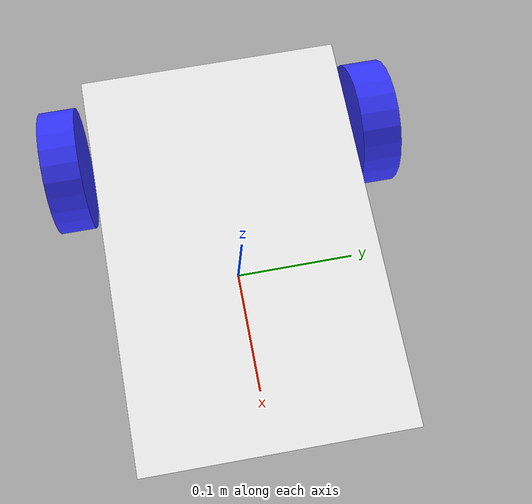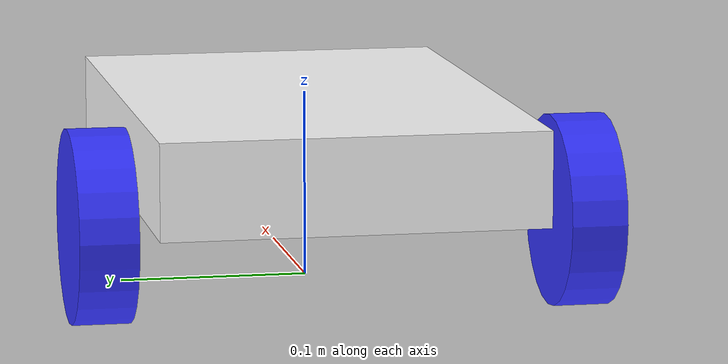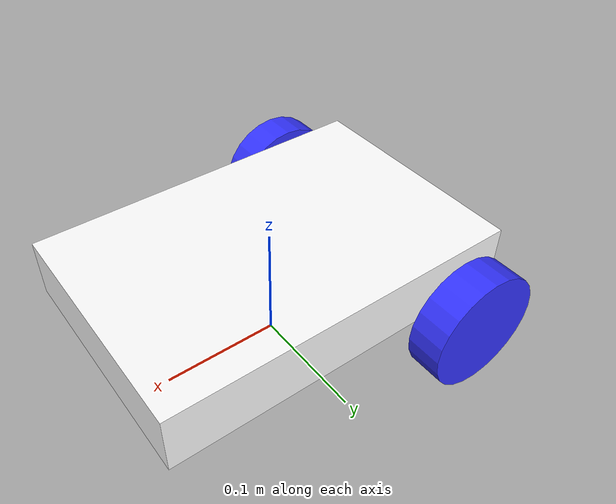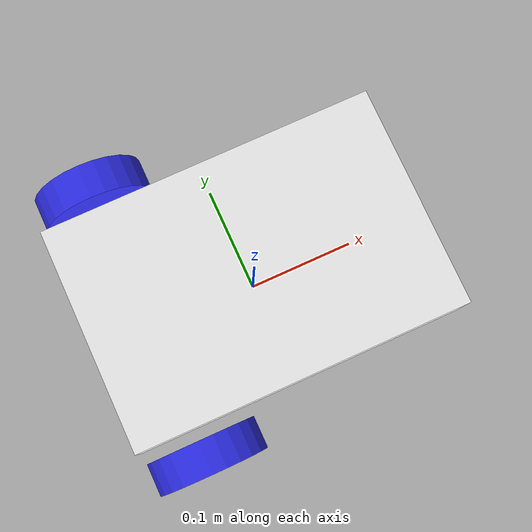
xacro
<?xml version="1.0"?>
<robot xmlns:xacro="http://www.ros.org/wiki/xacro">

    <material name="white">
        <color rgba="1 1 1 1" />
    </material>

    <material name="orange">
        <color rgba="1 0.3 0.1 1" />
    </material>

    <material name="blue">
        <color rgba="0.2 0.2 1 1" />
    </material>

    <material name="black">
        <color rgba="0 0 0 1" />
    </material>

    <material name="pink">
        <color rgba="0.7 0.09 0.5 1" />
    </material>

    <xacro:property name="box_x" value="0.3"/>
    <xacro:property name="box_y" value="0.2"/>
    <xacro:property name="box_z" value="0.05"/>

    <xacro:property name="wheel_radius" value="0.05"/>
    <xacro:property name="wheel_length" value="0.03"/>

    <xacro:property name="caster_wheel_radius" value="0.025"/>

    <xacro:property name="box_mass" value="0.5"/>
    <xacro:property name="wheel_mass" value="0.1"/>
    <xacro:property name="caster_wheel_mass" value="0.05"/>

    <xacro:property name="lidar_radius" value="0.03"/>
    <xacro:property name="lidar_length" value="0.03"/>

    <link name="base_link">
    </link>

    <link name="base_footprint">
    </link>

    <joint name="base_footprint_joint" type="fixed">
        <parent link="base_link" />
        <child link="base_footprint" />
        <origin xyz="0 0 0" rpy="0 0 0" />

    </joint>

    <link name="chassis">
        <visual>
            <origin xyz="0 0 0"/>
            <geometry>
                <box size="${box_x} ${box_y} ${box_z}"/>
            </geometry>
            <material name="white"/>
        </visual>
        <collision>
            <origin xyz="0 0 0"/>
            <geometry>
                <box size="${box_x-0.001} ${box_y-0.001} ${box_z-0.001}"/>
            </geometry>
        </collision>
        <inertial>
            <origin xyz="0 0 0" rpy="0 0 0" />
            <mass value="${box_mass}" />
            <inertia ixx="${(1/12)*box_mass*(box_y*box_y+box_z*box_z)}" ixy="0" ixz="0" iyy="${(1/12)*box_mass*(box_x*box_x+box_z*box_z)}" iyz="0"
            izz="${(1/12)*box_mass*(box_x*box_x+box_y*box_y)}" />
        </inertial>
    </link>

    <gazebo reference="chassis">
        <visual>
            <material>
                <ambient>1.0 1.0 1.0 1.0</ambient>
                <diffuse>1.0 1.0 1.0 1.0</diffuse>
                <specular>1.0 1.0 1.0 1.0</specular>
            </material>
        </visual>
    </gazebo>

    <joint name="chassis_joint" type="fixed">
        <parent link="base_link"/>
        <child link="chassis"/>
        <origin xyz="0 0 ${wheel_radius+box_z/2}"/>
    </joint>

    <link name="left_wheel">
        <visual>
            <origin xyz="0 0 0" rpy="${pi/2} 0 0"/>
            <geometry>
                <cylinder radius="${wheel_radius}" length="${wheel_length}" />
            </geometry>
            <material name='blue'/>
        </visual>
        <collision>
            <origin xyz="0 0 0" rpy="${pi/2} 0 0"/>
            <geometry>
                <cylinder radius="${wheel_radius}" length="${wheel_length-0.001}" />
            </geometry>
        </collision>
        <inertial>
            <origin xyz="0 0 0" rpy="${pi/2} 0 0" />
            <mass value="${wheel_mass}" />
            <inertia ixx="${(1/12)*wheel_mass*(3*wheel_radius*wheel_radius+wheel_length*wheel_length)}" ixy="0" ixz="0" iyy="${(1/12)*wheel_mass*(3*wheel_radius*wheel_radius+wheel_length*wheel_length)}" iyz="0"
            izz="${(1/2)*wheel_mass*(wheel_radius*wheel_radius)}" />
        </inertial>
    </link>
    <gazebo reference="left_wheel">
    <visual>
        <material>
            <ambient>0.0 0.0 1.0 1.0</ambient>
            <diffuse>0.0 0.0 1.0 1.0</diffuse>
            <specular>0.0 0.0 1.0 1.0</specular>
        </material>
    </visual>
    </gazebo>

    <joint name="left_wheel_joint" type="continuous">
        <parent link="base_link"/>
        <child link="left_wheel"/>
        <origin xyz="${-box_x/2+wheel_radius} ${box_y/2+wheel_length/2+0.01} ${wheel_radius}" rpy="0 0 0"/>
        <axis xyz="0 1 0" />
    </joint>

    <link name="right_wheel">
        <visual>
            <origin xyz="0 0 0" rpy="${pi/2} 0 0"/>
            <geometry>
                <cylinder radius="${wheel_radius}" length="${wheel_length-0.001}" />
            </geometry>
            <material name='blue'/>
        </visual>
        <collision>
            <origin xyz="0 0 0" rpy="${pi/2} 0 0"/>
            <geometry>
                <cylinder radius="${wheel_radius}" length="${wheel_length}" />
            </geometry>
        </collision>
        <inertial>
            <origin xyz="0 0 0" rpy="${pi/2} 0 0" />
            <mass value="${wheel_mass}" />
            <inertia ixx="${(1/12)*wheel_mass*(3*wheel_radius*wheel_radius+wheel_length*wheel_length)}" ixy="0" ixz="0" iyy="${(1/12)*wheel_mass*(3*wheel_radius*wheel_radius+wheel_length*wheel_length)}" iyz="0"
            izz="${(1/2)*wheel_mass*(wheel_radius*wheel_radius)}" />
        </inertial>

    </link>
    <gazebo reference="right_wheel">
    <visual>
        <material>
            <ambient>0.0 0.0 1.0 1.0</ambient>
            <diffuse>0.0 0.0 1.0 1.0</diffuse>
            <specular>0.0 0.0 1.0 1.0</specular>
        </material>
    </visual>
    </gazebo>

    <joint name="right_wheel_joint" type="continuous">
        <parent link="base_link"/>
        <child link="right_wheel"/>
        <origin xyz="${-box_x/2+wheel_radius} ${-box_y/2-wheel_length/2-0.01} ${wheel_radius}" rpy="0 0 0"/>
        <axis xyz="0 1 0" />
    </joint>

    <link name="caster_wheel">
        <visual>
            <geometry>
                <sphere radius="${caster_wheel_radius-0.001}" />
            </geometry>
            <origin xyz="0 0 ${-caster_wheel_radius}" />
            <material name="black"/>
        </visual>
        <collision>
            <geometry>
                <sphere radius="${caster_wheel_radius}" />
            </geometry>
            <origin xyz="0 0 ${-caster_wheel_radius}" />
        </collision>
        <inertial>
            <origin xyz="0 0 ${-caster_wheel_radius}" rpy="0 0 0" />
            <mass value="${caster_wheel_mass}" />
            <inertia ixx="${(2/5)*caster_wheel_mass*(caster_wheel_radius*caster_wheel_radius)}" ixy="0" ixz="0" iyy="${(2/5)*caster_wheel_mass*(caster_wheel_radius*caster_wheel_radius)}" iyz="0"
            izz="${(2/5)*caster_wheel_mass*(caster_wheel_radius*caster_wheel_radius)}" />
        </inertial>
    </link>
    <gazebo reference="caster_wheel">
        <mu1 value="0.001"/>
        <mu2 value="0.001"/>
        <surface>
        <friction>
            <ode>
            <mu>0.001</mu>
            <mu2>0.001</mu2>
            </ode>
        </friction>
        </surface>
    </gazebo>

    <joint name="caster_wheel_joint" type="fixed">
        <parent link="base_link"/>
        <child link="caster_wheel"/>
        <origin xyz="${box_x/2-box_x/6} 0 ${wheel_radius}" rpy="0 0 0" />
    </joint>

</robot>
